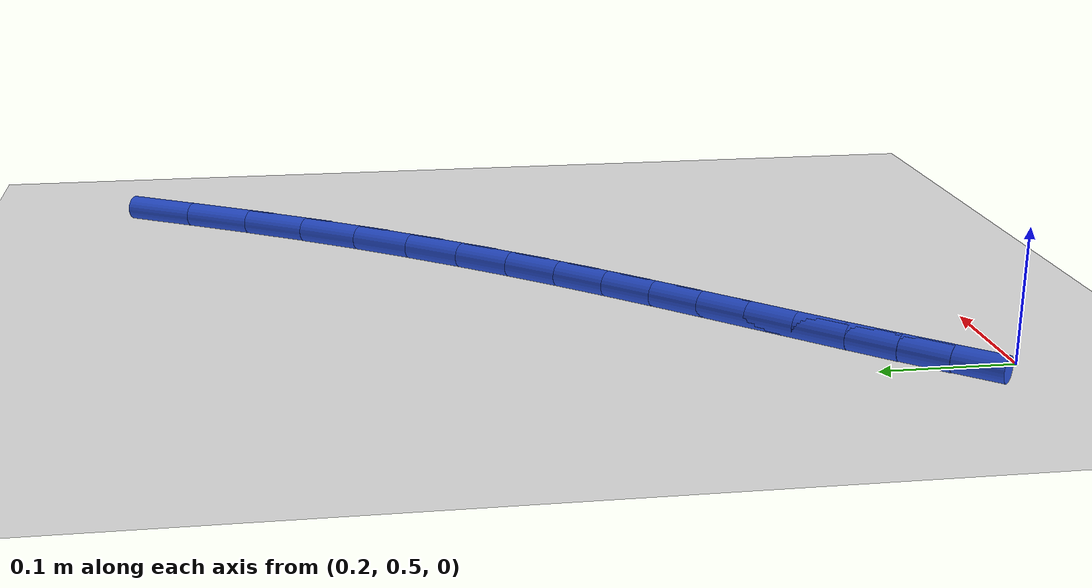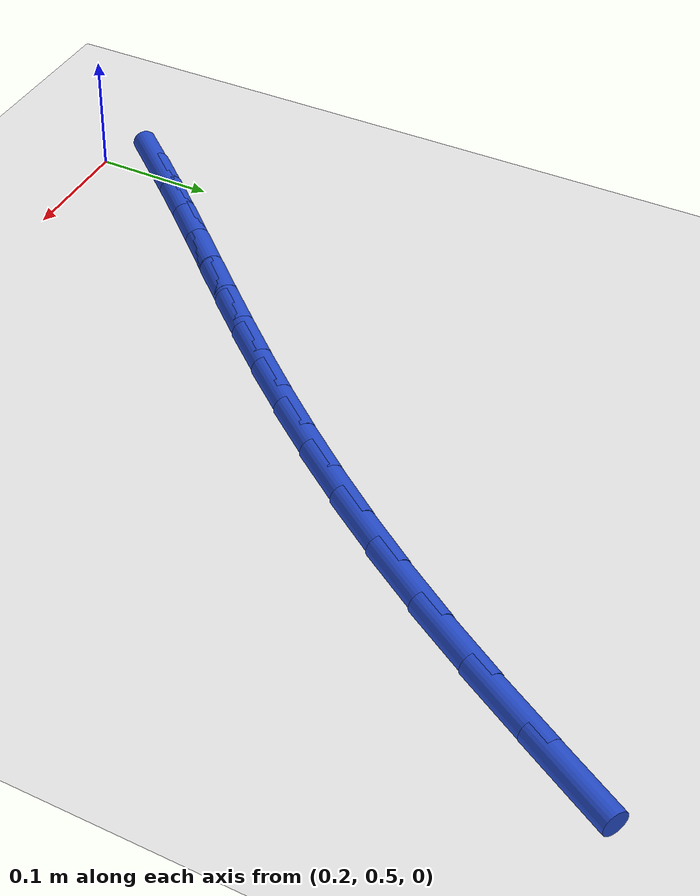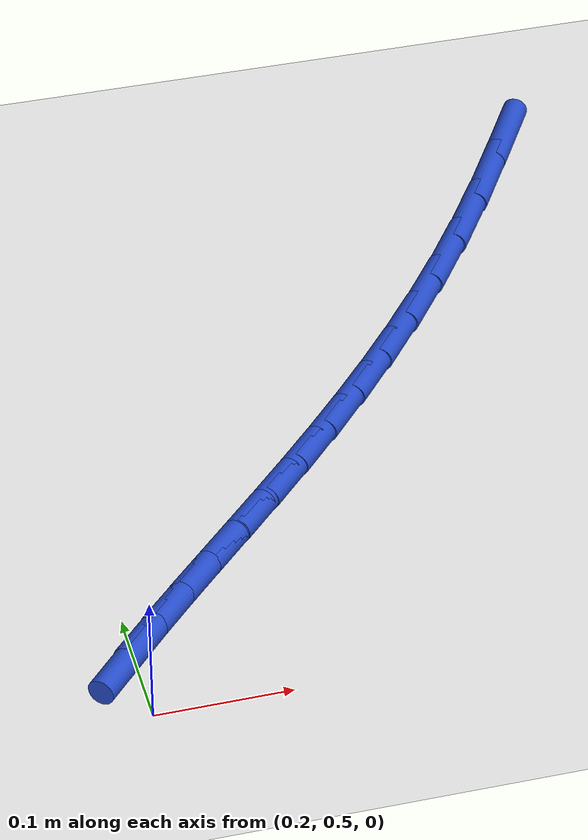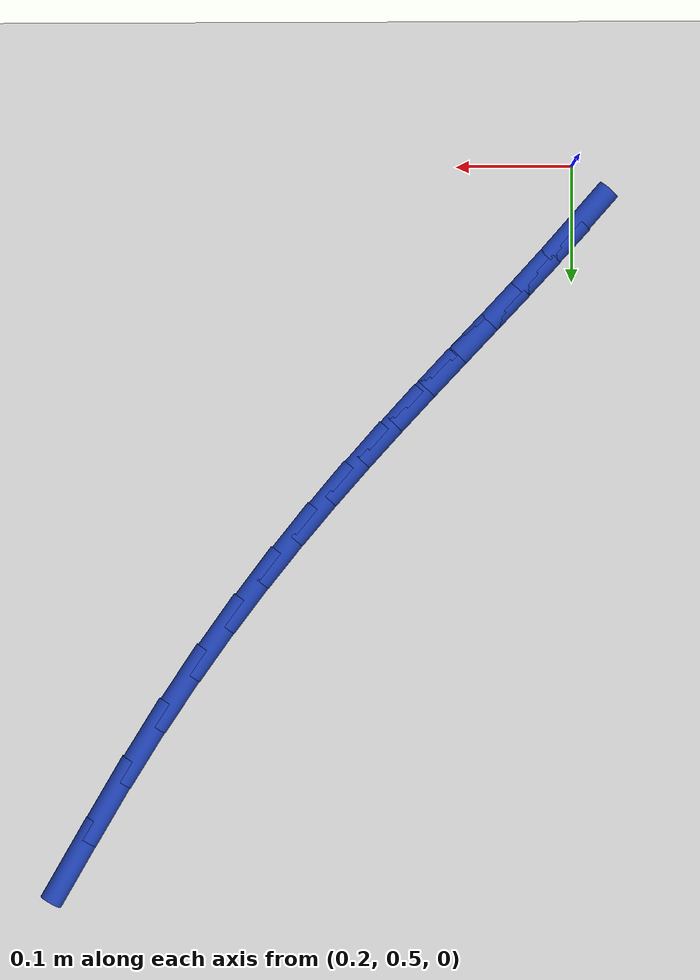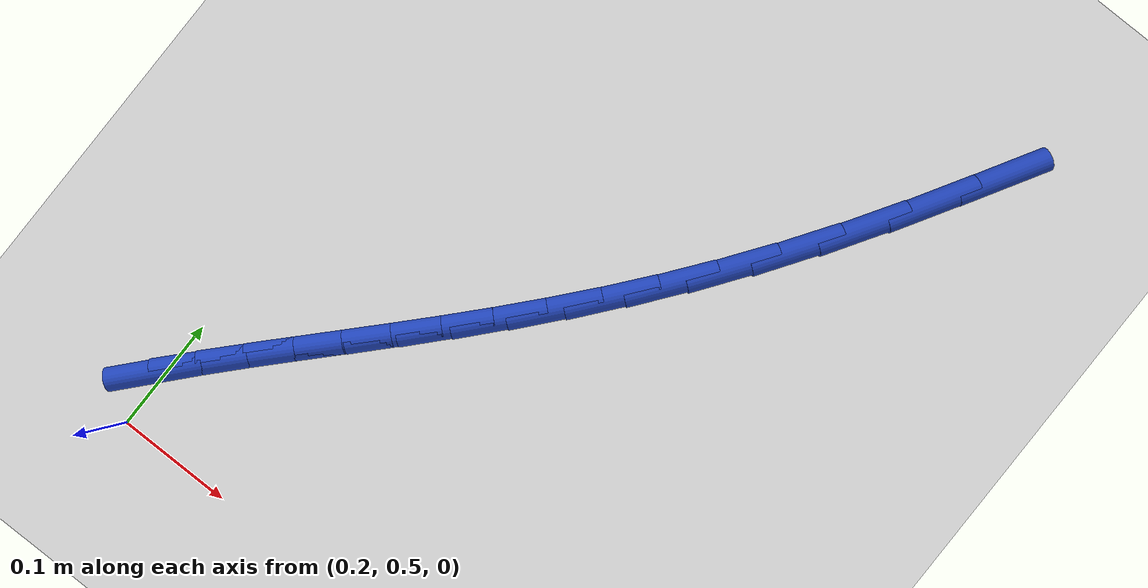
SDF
<sdf version="1.6">
 <world name="default">
  <model name="ground_plane">
   <static>1</static>
   <link name="link">
    <collision name="collision">
     <geometry><plane><normal>0 0 1</normal><size>100 100</size></plane></geometry>
     <surface><friction><ode><mu>100</mu><mu2>50</mu2></ode></friction></surface>
    </collision>
    <visual name="visual">
     <cast_shadows>0</cast_shadows>
     <geometry><plane><normal>0 0 1</normal><size>100 100</size></plane></geometry>
     <material>
      <script><uri>file://media/materials/scripts/gazebo.material</uri><name>Gazebo/WhiteGlow</name></script>
     </material>
    </visual>
   </link>
  </model>
  <model name="line">
   <link name="link_15">
    <pose>0.19471921817997995 0.550841237652221 0.01 0 1.57 0.8466597277962639</pose>
    <collision name="collision">
     <geometry><cylinder><radius>0.01</radius><length>0.08</length></cylinder></geometry>
    </collision>
    <visual name="visual">
     <material>
      <script><name>Gazebo/Blue</name><uri>file://media/materials/scripts/gazebo.material</uri></script>
     </material>
     <geometry><cylinder><radius>0.01</radius><length>0.08</length></cylinder></geometry>
    </visual>
   </link>
   <link name="link_16">
    <pose>0.21944362975559972 0.5787969600041911 0.01 0 1.57 0.8275761211800636</pose>
    <collision name="collision">
     <geometry><cylinder><radius>0.01</radius><length>0.08</length></cylinder></geometry>
    </collision>
    <visual name="visual">
     <material>
      <script><name>Gazebo/Blue</name><uri>file://media/materials/scripts/gazebo.material</uri></script>
     </material>
     <geometry><cylinder><radius>0.01</radius><length>0.08</length></cylinder></geometry>
    </visual>
   </link>
   <link name="link_17">
    <pose>0.24519384159699553 0.60681641227255 0.01 0 1.57 0.8157292339989374</pose>
    <collision name="collision">
     <geometry><cylinder><radius>0.01</radius><length>0.08</length></cylinder></geometry>
    </collision>
    <visual name="visual">
     <material>
      <script><name>Gazebo/Blue</name><uri>file://media/materials/scripts/gazebo.material</uri></script>
     </material>
     <geometry><cylinder><radius>0.01</radius><length>0.08</length></cylinder></geometry>
    </visual>
   </link>
   <link name="link_18">
    <pose>0.27188313846154333 0.6351759102312649 0.01 0 1.57 0.8107687899891362</pose>
    <collision name="collision">
     <geometry><cylinder><radius>0.01</radius><length>0.08</length></cylinder></geometry>
    </collision>
    <visual name="visual">
     <material>
      <script><name>Gazebo/Blue</name><uri>file://media/materials/scripts/gazebo.material</uri></script>
     </material>
     <geometry><cylinder><radius>0.01</radius><length>0.08</length></cylinder></geometry>
    </visual>
   </link>
   <link name="link_19">
    <pose>0.2994248051066193 0.6641517696543034 0.01 0 1.57 0.8122278641269788</pose>
    <collision name="collision">
     <geometry><cylinder><radius>0.01</radius><length>0.08</length></cylinder></geometry>
    </collision>
    <visual name="visual">
     <material>
      <script><name>Gazebo/Blue</name><uri>file://media/materials/scripts/gazebo.material</uri></script>
     </material>
     <geometry><cylinder><radius>0.01</radius><length>0.08</length></cylinder></geometry>
    </visual>
   </link>
   <link name="link_20">
    <pose>0.3277321262895995 0.6940203063156328 0.01 0 1.57 0.8195591386262284</pose>
    <collision name="collision">
     <geometry><cylinder><radius>0.01</radius><length>0.08</length></cylinder></geometry>
    </collision>
    <visual name="visual">
     <material>
      <script><name>Gazebo/Blue</name><uri>file://media/materials/scripts/gazebo.material</uri></script>
     </material>
     <geometry><cylinder><radius>0.01</radius><length>0.08</length></cylinder></geometry>
    </visual>
   </link>
   <link name="link_21">
    <pose>0.35671838676786 0.7250578359892201 0.01 0 1.57 0.8321621756582159</pose>
    <collision name="collision">
     <geometry><cylinder><radius>0.01</radius><length>0.08</length></cylinder></geometry>
    </collision>
    <visual name="visual">
     <material>
      <script><name>Gazebo/Blue</name><uri>file://media/materials/scripts/gazebo.material</uri></script>
     </material>
     <geometry><cylinder><radius>0.01</radius><length>0.08</length></cylinder></geometry>
    </visual>
   </link>
   <link name="link_22">
    <pose>0.3862968712987769 0.7575406744490328 0.01 0 1.57 0.8494040755090081</pose>
    <collision name="collision">
     <geometry><cylinder><radius>0.01</radius><length>0.08</length></cylinder></geometry>
    </collision>
    <visual name="visual">
     <material>
      <script><name>Gazebo/Blue</name><uri>file://media/materials/scripts/gazebo.material</uri></script>
     </material>
     <geometry><cylinder><radius>0.01</radius><length>0.08</length></cylinder></geometry>
    </visual>
   </link>
   <link name="link_23">
    <pose>0.4163808646397261 0.7917451374690379 0.01 0 1.57 0.8706360021975161</pose>
    <collision name="collision">
     <geometry><cylinder><radius>0.01</radius><length>0.08</length></cylinder></geometry>
    </collision>
    <visual name="visual">
     <material>
      <script><name>Gazebo/Blue</name><uri>file://media/materials/scripts/gazebo.material</uri></script>
     </material>
     <geometry><cylinder><radius>0.01</radius><length>0.08</length></cylinder></geometry>
    </visual>
   </link>
   <link name="link_24">
    <pose>0.44688365154808396 0.8279475408232031 0.01 0 1.57 0.8952075259820951</pose>
    <collision name="collision">
     <geometry><cylinder><radius>0.01</radius><length>0.08</length></cylinder></geometry>
    </collision>
    <visual name="visual">
     <material>
      <script><name>Gazebo/Blue</name><uri>file://media/materials/scripts/gazebo.material</uri></script>
     </material>
     <geometry><cylinder><radius>0.01</radius><length>0.08</length></cylinder></geometry>
    </visual>
   </link>
   <link name="link_25">
    <pose>0.4777185167812262 0.8664242002854953 0.01 0 1.57 0.9224799410381123</pose>
    <collision name="collision">
     <geometry><cylinder><radius>0.01</radius><length>0.08</length></cylinder></geometry>
    </collision>
    <visual name="visual">
     <material>
      <script><name>Gazebo/Blue</name><uri>file://media/materials/scripts/gazebo.material</uri></script>
     </material>
     <geometry><cylinder><radius>0.01</radius><length>0.08</length></cylinder></geometry>
    </visual>
   </link>
   <link name="link_26">
    <pose>0.508798745096529 0.9074514316298817 0.01 0 1.57 0.9518389310442381</pose>
    <collision name="collision">
     <geometry><cylinder><radius>0.01</radius><length>0.08</length></cylinder></geometry>
    </collision>
    <visual name="visual">
     <material>
      <script><name>Gazebo/Blue</name><uri>file://media/materials/scripts/gazebo.material</uri></script>
     </material>
     <geometry><cylinder><radius>0.01</radius><length>0.08</length></cylinder></geometry>
    </visual>
   </link>
   <link name="link_27">
    <pose>0.5400376212513686 0.9513055506303301 0.01 0 1.57 0.9827063426339524</pose>
    <collision name="collision">
     <geometry><cylinder><radius>0.01</radius><length>0.08</length></cylinder></geometry>
    </collision>
    <visual name="visual">
     <material>
      <script><name>Gazebo/Blue</name><uri>file://media/materials/scripts/gazebo.material</uri></script>
     </material>
     <geometry><cylinder><radius>0.01</radius><length>0.08</length></cylinder></geometry>
    </visual>
   </link>
   <link name="link_28">
    <pose>0.5713484300031209 0.9982628730608071 0.01 0 1.57 1.0143931177944268</pose>
    <collision name="collision">
     <geometry><cylinder><radius>0.01</radius><length>0.08</length></cylinder></geometry>
    </collision>
    <visual name="visual">
     <material>
      <script><name>Gazebo/Blue</name><uri>file://media/materials/scripts/gazebo.material</uri></script>
     </material>
     <geometry><cylinder><radius>0.01</radius><length>0.08</length></cylinder></geometry>
    </visual>
   </link>
   <link name="link_29">
    <pose>0.6026414614797672 1.0485772397628415 0.01 0 1.57 1.0387962812588707</pose>
    <collision name="collision">
     <geometry><cylinder><radius>0.01</radius><length>0.08</length></cylinder></geometry>
    </collision>
    <visual name="visual">
     <material>
      <script><name>Gazebo/Blue</name><uri>file://media/materials/scripts/gazebo.material</uri></script>
     </material>
     <geometry><cylinder><radius>0.01</radius><length>0.08</length></cylinder></geometry>
    </visual>
   </link>
   <link name="link_30">
    <pose>0.6336645419196736 1.1012831871294024 0.01 0 1.57 1.0463994306227589</pose>
    <collision name="collision">
     <geometry><cylinder><radius>0.01</radius><length>0.08</length></cylinder></geometry>
    </collision>
    <visual name="visual">
     <material>
      <script><name>Gazebo/Blue</name><uri>file://media/materials/scripts/gazebo.material</uri></script>
     </material>
     <geometry><cylinder><radius>0.01</radius><length>0.08</length></cylinder></geometry>
    </visual>
   </link>
  </model>
 </world>
</sdf>
